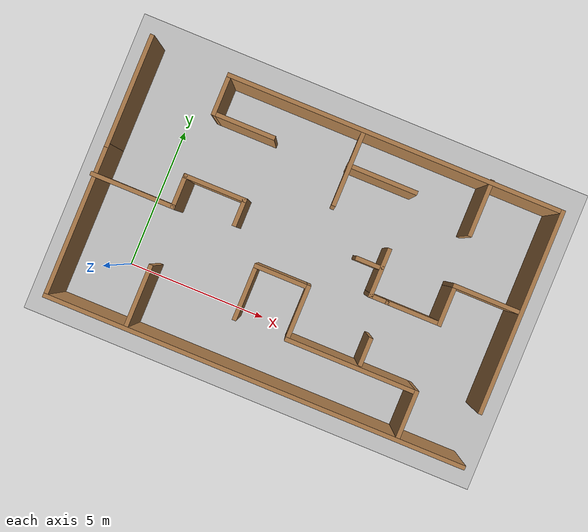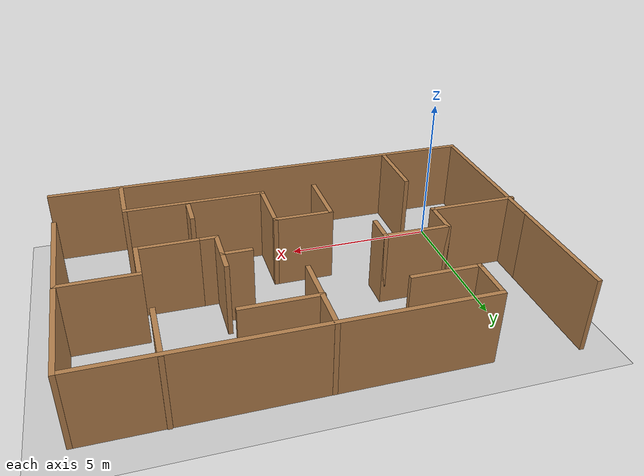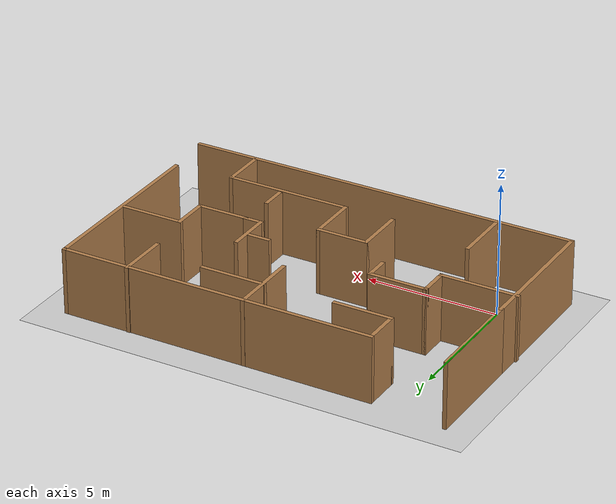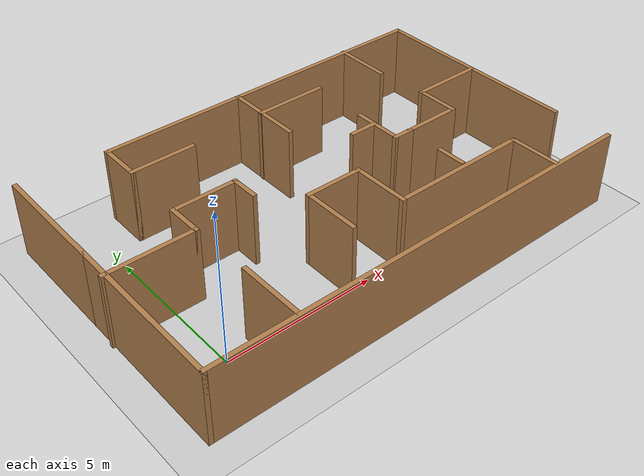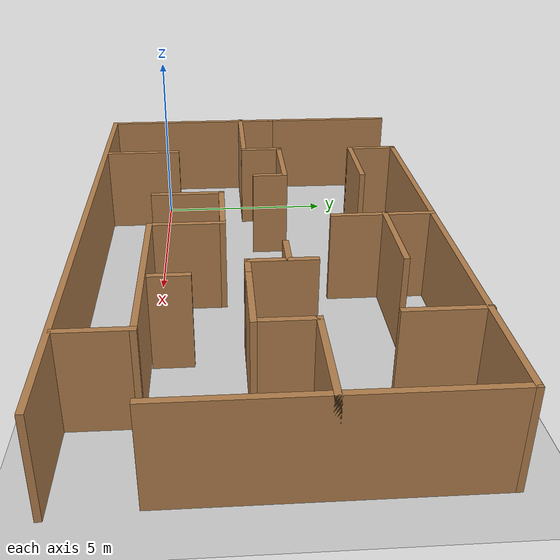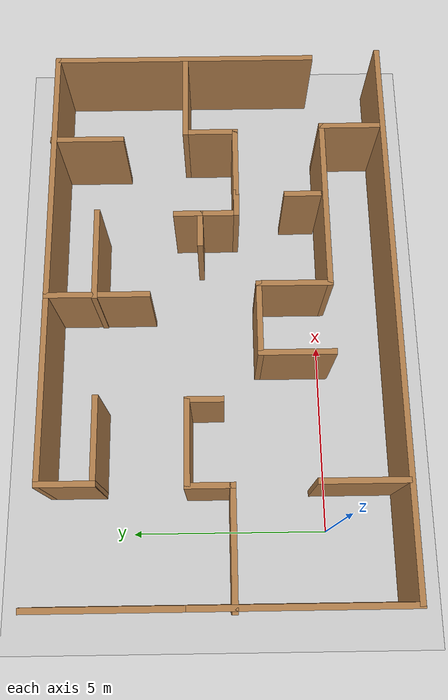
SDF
<?xml version="1.0"?>
<sdf version="1.6">
  <world name="default">

    <include>
      <uri>model://ground_plane</uri>
    </include>

    <include>
      <uri>model://sun</uri>
    </include>

   <include>
      <uri>model://maze1</uri>
    </include>

    <scene>
      <shadows>false</shadows>
    </scene>

    <gui fullscreen='0'>
      <camera name='user_camera'>
        <pose frame=''>0.319654 -0.235002 9.29441 0 1.5138 0.009599</pose>
        <view_controller>orbit</view_controller>
        <projection_type>perspective</projection_type>
      </camera>
    </gui>

    <physics type="ode">
      <real_time_update_rate>1000.0</real_time_update_rate>
      <max_step_size>0.001</max_step_size>
      <real_time_factor>1</real_time_factor>
      <ode>
        <solver>
          <type>quick</type>
          <iters>150</iters>
          <precon_iters>0</precon_iters>
          <sor>1.400000</sor>
          <use_dynamic_moi_rescaling>1</use_dynamic_moi_rescaling>
        </solver>
        <constraints>
          <cfm>0.00001</cfm>
          <erp>0.2</erp>
          <contact_max_correcting_vel>2000.000000</contact_max_correcting_vel>
          <contact_surface_layer>0.01000</contact_surface_layer>
        </constraints>
      </ode>
    </physics>

  </world>
</sdf>

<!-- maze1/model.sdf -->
<sdf version='1.7'>
  <model name='maze1'>
    <pose>5.54702 2.74637 0 0 -0 0</pose>
    <link name='Wall_10'>
      <collision name='Wall_10_Collision'>
        <geometry>
          <box>
            <size>15 0.15 2.5</size>
          </box>
        </geometry>
        <pose>0 0 1.25 0 -0 0</pose>
      </collision>
      <visual name='Wall_10_Visual'>
        <pose>0 0 1.25 0 -0 0</pose>
        <geometry>
          <box>
            <size>15 0.15 2.5</size>
          </box>
        </geometry>
        <material>
          <script>
            <uri>file://media/materials/scripts/gazebo.material</uri>
            <name>Gazebo/Wood</name>
          </script>
          <ambient>1 1 1 1</ambient>
        </material>
        <meta>
          <layer>0</layer>
        </meta>
      </visual>
      <pose>0.04013 -4.6 0 0 -0 0</pose>
    </link>
    <link name='Wall_12'>
      <collision name='Wall_12_Collision'>
        <geometry>
          <box>
            <size>7.25 0.15 2.5</size>
          </box>
        </geometry>
        <pose>0 0 1.25 0 -0 0</pose>
      </collision>
      <visual name='Wall_12_Visual'>
        <pose>0 0 1.25 0 -0 0</pose>
        <geometry>
          <box>
            <size>7.25 0.15 2.5</size>
          </box>
        </geometry>
        <material>
          <script>
            <uri>file://media/materials/scripts/gazebo.material</uri>
            <name>Gazebo/Wood</name>
          </script>
          <ambient>1 1 1 1</ambient>
        </material>
        <meta>
          <layer>0</layer>
        </meta>
      </visual>
      <pose>7.31367 0.850982 0 0 -0 1.5708</pose>
    </link>
    <link name='Wall_13'>
      <collision name='Wall_13_Collision'>
        <geometry>
          <box>
            <size>12 0.15 2.5</size>
          </box>
        </geometry>
        <pose>0 0 1.25 0 -0 0</pose>
      </collision>
      <visual name='Wall_13_Visual'>
        <pose>0 0 1.25 0 -0 0</pose>
        <geometry>
          <box>
            <size>12 0.15 2.5</size>
          </box>
        </geometry>
        <material>
          <script>
            <uri>file://media/materials/scripts/gazebo.material</uri>
            <name>Gazebo/Wood</name>
          </script>
          <ambient>1 1 1 1</ambient>
        </material>
        <meta>
          <layer>0</layer>
        </meta>
      </visual>
      <pose>1.38867 4.40098 0 0 -0 3.14159</pose>
    </link>
    <link name='Wall_14'>
      <collision name='Wall_14_Collision'>
        <geometry>
          <box>
            <size>1.5 0.15 2.5</size>
          </box>
        </geometry>
        <pose>0 0 1.25 0 -0 0</pose>
      </collision>
      <visual name='Wall_14_Visual'>
        <pose>0 0 1.25 0 -0 0</pose>
        <geometry>
          <box>
            <size>1.5 0.15 2.5</size>
          </box>
        </geometry>
        <material>
          <script>
            <uri>file://media/materials/scripts/gazebo.material</uri>
            <name>Gazebo/Wood</name>
          </script>
          <ambient>1 1 1 1</ambient>
        </material>
        <meta>
          <layer>0</layer>
        </meta>
      </visual>
      <pose>-4.53633 3.72598 0 0 -0 -1.5708</pose>
    </link>
    <link name='Wall_15'>
      <collision name='Wall_15_Collision'>
        <geometry>
          <box>
            <size>2.25 0.15 2.5</size>
          </box>
        </geometry>
        <pose>0 0 1.25 0 -0 0</pose>
      </collision>
      <visual name='Wall_15_Visual'>
        <pose>0 0 1.25 0 -0 0</pose>
        <geometry>
          <box>
            <size>2.25 0.15 2.5</size>
          </box>
        </geometry>
        <material>
          <script>
            <uri>file://media/materials/scripts/gazebo.material</uri>
            <name>Gazebo/Wood</name>
          </script>
          <ambient>1 1 1 1</ambient>
        </material>
        <meta>
          <layer>0</layer>
        </meta>
      </visual>
      <pose>-3.48633 3.05098 0 0 -0 0</pose>
    </link>
    <link name='Wall_17'>
      <collision name='Wall_17_Collision'>
        <geometry>
          <box>
            <size>2.75 0.15 2.5</size>
          </box>
        </geometry>
        <pose>0 0 1.25 0 -0 0</pose>
      </collision>
      <visual name='Wall_17_Visual'>
        <pose>0 0 1.25 0 -0 0</pose>
        <geometry>
          <box>
            <size>2.75 0.15 2.5</size>
          </box>
        </geometry>
        <material>
          <script>
            <uri>file://media/materials/scripts/gazebo.material</uri>
            <name>Gazebo/Wood</name>
          </script>
          <ambient>1 1 1 1</ambient>
        </material>
        <meta>
          <layer>0</layer>
        </meta>
      </visual>
      <pose>0.259066 3.10342 0 0 -0 -1.5708</pose>
    </link>
    <link name='Wall_19'>
      <collision name='Wall_19_Collision'>
        <geometry>
          <box>
            <size>2.5 0.15 2.5</size>
          </box>
        </geometry>
        <pose>0 0 1.25 0 -0 0</pose>
      </collision>
      <visual name='Wall_19_Visual'>
        <pose>0 0 1.25 0 -0 0</pose>
        <geometry>
          <box>
            <size>2.5 0.15 2.5</size>
          </box>
        </geometry>
        <material>
          <script>
            <uri>file://media/materials/scripts/gazebo.material</uri>
            <name>Gazebo/Wood</name>
          </script>
          <ambient>1 1 1 1</ambient>
        </material>
        <meta>
          <layer>0</layer>
        </meta>
      </visual>
      <pose>1.41015 3.15989 0 0 -0 0</pose>
    </link>
    <link name='Wall_21'>
      <collision name='Wall_21_Collision'>
        <geometry>
          <box>
            <size>2 0.15 2.5</size>
          </box>
        </geometry>
        <pose>0 0 1.25 0 -0 0</pose>
      </collision>
      <visual name='Wall_21_Visual'>
        <pose>0 0 1.25 0 -0 0</pose>
        <geometry>
          <box>
            <size>2 0.15 2.5</size>
          </box>
        </geometry>
        <material>
          <script>
            <uri>file://media/materials/scripts/gazebo.material</uri>
            <name>Gazebo/Wood</name>
          </script>
          <ambient>1 1 1 1</ambient>
        </material>
        <meta>
          <layer>0</layer>
        </meta>
      </visual>
      <pose>4.7788 3.50233 0 0 -0 -1.5708</pose>
    </link>
    <link name='Wall_23'>
      <collision name='Wall_23_Collision'>
        <geometry>
          <box>
            <size>2.5 0.15 2.5</size>
          </box>
        </geometry>
        <pose>0 0 1.25 0 -0 0</pose>
      </collision>
      <visual name='Wall_23_Visual'>
        <pose>0 0 1.25 0 -0 0</pose>
        <geometry>
          <box>
            <size>2.5 0.15 2.5</size>
          </box>
        </geometry>
        <material>
          <script>
            <uri>file://media/materials/scripts/gazebo.material</uri>
            <name>Gazebo/Wood</name>
          </script>
          <ambient>1 1 1 1</ambient>
        </material>
        <meta>
          <layer>0</layer>
        </meta>
      </visual>
      <pose>6.13867 0.816328 0 0 -0 3.14159</pose>
    </link>
    <link name='Wall_24'>
      <collision name='Wall_24_Collision'>
        <geometry>
          <box>
            <size>1.5 0.15 2.5</size>
          </box>
        </geometry>
        <pose>0 0 1.25 0 -0 0</pose>
      </collision>
      <visual name='Wall_24_Visual'>
        <pose>0 0 1.25 0 -0 0</pose>
        <geometry>
          <box>
            <size>1.5 0.15 2.5</size>
          </box>
        </geometry>
        <material>
          <script>
            <uri>file://media/materials/scripts/gazebo.material</uri>
            <name>Gazebo/Wood</name>
          </script>
          <ambient>1 1 1 1</ambient>
        </material>
        <meta>
          <layer>0</layer>
        </meta>
      </visual>
      <pose>4.96367 0.141328 0 0 -0 -1.5708</pose>
    </link>
    <link name='Wall_25'>
      <collision name='Wall_25_Collision'>
        <geometry>
          <box>
            <size>2 0.15 2.5</size>
          </box>
        </geometry>
        <pose>0 0 1.25 0 -0 0</pose>
      </collision>
      <visual name='Wall_25_Visual'>
        <pose>0 0 1.25 0 -0 0</pose>
        <geometry>
          <box>
            <size>2 0.15 2.5</size>
          </box>
        </geometry>
        <material>
          <script>
            <uri>file://media/materials/scripts/gazebo.material</uri>
            <name>Gazebo/Wood</name>
          </script>
          <ambient>1 1 1 1</ambient>
        </material>
        <meta>
          <layer>0</layer>
        </meta>
      </visual>
      <pose>4.03867 -0.533672 0 0 -0 3.14159</pose>
    </link>
    <link name='Wall_26'>
      <collision name='Wall_26_Collision'>
        <geometry>
          <box>
            <size>0.75 0.15 2.5</size>
          </box>
        </geometry>
        <pose>0 0 1.25 0 -0 0</pose>
      </collision>
      <visual name='Wall_26_Visual'>
        <pose>0 0 1.25 0 -0 0</pose>
        <geometry>
          <box>
            <size>0.75 0.15 2.5</size>
          </box>
        </geometry>
        <material>
          <script>
            <uri>file://media/materials/scripts/gazebo.material</uri>
            <name>Gazebo/Wood</name>
          </script>
          <ambient>1 1 1 1</ambient>
        </material>
        <meta>
          <layer>0</layer>
        </meta>
      </visual>
      <pose>2.81367 -0.533672 0 0 -0 3.14159</pose>
    </link>
    <link name='Wall_27'>
      <collision name='Wall_27_Collision'>
        <geometry>
          <box>
            <size>1.75 0.15 2.5</size>
          </box>
        </geometry>
        <pose>0 0 1.25 0 -0 0</pose>
      </collision>
      <visual name='Wall_27_Visual'>
        <pose>0 0 1.25 0 -0 0</pose>
        <geometry>
          <box>
            <size>1.75 0.15 2.5</size>
          </box>
        </geometry>
        <material>
          <script>
            <uri>file://media/materials/scripts/gazebo.material</uri>
            <name>Gazebo/Wood</name>
          </script>
          <ambient>1 1 1 1</ambient>
        </material>
        <meta>
          <layer>0</layer>
        </meta>
      </visual>
      <pose>2.51367 0.266328 0 0 -0 1.5708</pose>
    </link>
    <link name='Wall_29'>
      <collision name='Wall_29_Collision'>
        <geometry>
          <box>
            <size>3 0.15 2.5</size>
          </box>
        </geometry>
        <pose>0 0 1.25 0 -0 0</pose>
      </collision>
      <visual name='Wall_29_Visual'>
        <pose>0 0 1.25 0 -0 0</pose>
        <geometry>
          <box>
            <size>3 0.15 2.5</size>
          </box>
        </geometry>
        <material>
          <script>
            <uri>file://media/materials/scripts/gazebo.material</uri>
            <name>Gazebo/Wood</name>
          </script>
          <ambient>1 1 1 1</ambient>
        </material>
        <meta>
          <layer>0</layer>
        </meta>
      </visual>
      <pose>-6.04013 -0.307626 0 0 -0 0</pose>
    </link>
    <link name='Wall_30'>
      <collision name='Wall_30_Collision'>
        <geometry>
          <box>
            <size>1.25 0.15 2.5</size>
          </box>
        </geometry>
        <pose>0 0 1.25 0 -0 0</pose>
      </collision>
      <visual name='Wall_30_Visual'>
        <pose>0 0 1.25 0 -0 0</pose>
        <geometry>
          <box>
            <size>1.25 0.15 2.5</size>
          </box>
        </geometry>
        <material>
          <script>
            <uri>file://media/materials/scripts/gazebo.material</uri>
            <name>Gazebo/Wood</name>
          </script>
          <ambient>1 1 1 1</ambient>
        </material>
        <meta>
          <layer>0</layer>
        </meta>
      </visual>
      <pose>-4.61513 0.242374 0 0 -0 1.5708</pose>
    </link>
    <link name='Wall_31'>
      <collision name='Wall_31_Collision'>
        <geometry>
          <box>
            <size>2.25 0.15 2.5</size>
          </box>
        </geometry>
        <pose>0 0 1.25 0 -0 0</pose>
      </collision>
      <visual name='Wall_31_Visual'>
        <pose>0 0 1.25 0 -0 0</pose>
        <geometry>
          <box>
            <size>2.25 0.15 2.5</size>
          </box>
        </geometry>
        <material>
          <script>
            <uri>file://media/materials/scripts/gazebo.material</uri>
            <name>Gazebo/Wood</name>
          </script>
          <ambient>1 1 1 1</ambient>
        </material>
        <meta>
          <layer>0</layer>
        </meta>
      </visual>
      <pose>-3.56513 0.792374 0 0 -0 0</pose>
    </link>
    <link name='Wall_33'>
      <collision name='Wall_33_Collision'>
        <geometry>
          <box>
            <size>2.25 0.15 2.5</size>
          </box>
        </geometry>
        <pose>0 0 1.25 0 -0 0</pose>
      </collision>
      <visual name='Wall_33_Visual'>
        <pose>0 0 1.25 0 -0 0</pose>
        <geometry>
          <box>
            <size>2.25 0.15 2.5</size>
          </box>
        </geometry>
        <material>
          <script>
            <uri>file://media/materials/scripts/gazebo.material</uri>
            <name>Gazebo/Wood</name>
          </script>
          <ambient>1 1 1 1</ambient>
        </material>
        <meta>
          <layer>0</layer>
        </meta>
      </visual>
      <pose>-4.54763 -3.46205 0 0 -0 -1.5708</pose>
    </link>
    <link name='Wall_35'>
      <collision name='Wall_35_Collision'>
        <geometry>
          <box>
            <size>1.75 0.15 2.5</size>
          </box>
        </geometry>
        <pose>0 0 1.25 0 -0 0</pose>
      </collision>
      <visual name='Wall_35_Visual'>
        <pose>0 0 1.25 0 -0 0</pose>
        <geometry>
          <box>
            <size>1.75 0.15 2.5</size>
          </box>
        </geometry>
        <material>
          <script>
            <uri>file://media/materials/scripts/gazebo.material</uri>
            <name>Gazebo/Wood</name>
          </script>
          <ambient>1 1 1 1</ambient>
        </material>
        <meta>
          <layer>0</layer>
        </meta>
      </visual>
      <pose>5.11359 -3.71648 0 0 -0 1.5708</pose>
    </link>
    <link name='Wall_36'>
      <collision name='Wall_36_Collision'>
        <geometry>
          <box>
            <size>4.75 0.15 2.5</size>
          </box>
        </geometry>
        <pose>0 0 1.25 0 -0 0</pose>
      </collision>
      <visual name='Wall_36_Visual'>
        <pose>0 0 1.25 0 -0 0</pose>
        <geometry>
          <box>
            <size>4.75 0.15 2.5</size>
          </box>
        </geometry>
        <material>
          <script>
            <uri>file://media/materials/scripts/gazebo.material</uri>
            <name>Gazebo/Wood</name>
          </script>
          <ambient>1 1 1 1</ambient>
        </material>
        <meta>
          <layer>0</layer>
        </meta>
      </visual>
      <pose>2.81359 -2.91648 0 0 -0 3.14159</pose>
    </link>
    <link name='Wall_37'>
      <collision name='Wall_37_Collision'>
        <geometry>
          <box>
            <size>2 0.15 2.5</size>
          </box>
        </geometry>
        <pose>0 0 1.25 0 -0 0</pose>
      </collision>
      <visual name='Wall_37_Visual'>
        <pose>0 0 1.25 0 -0 0</pose>
        <geometry>
          <box>
            <size>2 0.15 2.5</size>
          </box>
        </geometry>
        <material>
          <script>
            <uri>file://media/materials/scripts/gazebo.material</uri>
            <name>Gazebo/Wood</name>
          </script>
          <ambient>1 1 1 1</ambient>
        </material>
        <meta>
          <layer>0</layer>
        </meta>
      </visual>
      <pose>0.513592 -1.99148 0 0 -0 1.5708</pose>
    </link>
    <link name='Wall_38'>
      <collision name='Wall_38_Collision'>
        <geometry>
          <box>
            <size>2 0.15 2.5</size>
          </box>
        </geometry>
        <pose>0 0 1.25 0 -0 0</pose>
      </collision>
      <visual name='Wall_38_Visual'>
        <pose>0 0 1.25 0 -0 0</pose>
        <geometry>
          <box>
            <size>2 0.15 2.5</size>
          </box>
        </geometry>
        <material>
          <script>
            <uri>file://media/materials/scripts/gazebo.material</uri>
            <name>Gazebo/Wood</name>
          </script>
          <ambient>1 1 1 1</ambient>
        </material>
        <meta>
          <layer>0</layer>
        </meta>
      </visual>
      <pose>-0.411408 -1.06648 0 0 -0 3.14159</pose>
    </link>
    <link name='Wall_39'>
      <collision name='Wall_39_Collision'>
        <geometry>
          <box>
            <size>2 0.15 2.5</size>
          </box>
        </geometry>
        <pose>0 0 1.25 0 -0 0</pose>
      </collision>
      <visual name='Wall_39_Visual'>
        <pose>0 0 1.25 0 -0 0</pose>
        <geometry>
          <box>
            <size>2 0.15 2.5</size>
          </box>
        </geometry>
        <material>
          <script>
            <uri>file://media/materials/scripts/gazebo.material</uri>
            <name>Gazebo/Wood</name>
          </script>
          <ambient>1 1 1 1</ambient>
        </material>
        <meta>
          <layer>0</layer>
        </meta>
      </visual>
      <pose>-1.33641 -1.99148 0 0 -0 -1.5708</pose>
    </link>
    <link name='Wall_41'>
      <collision name='Wall_41_Collision'>
        <geometry>
          <box>
            <size>1 0.15 2.5</size>
          </box>
        </geometry>
        <pose>0 0 1.25 0 -0 0</pose>
      </collision>
      <visual name='Wall_41_Visual'>
        <pose>0 0 1.25 0 -0 0</pose>
        <geometry>
          <box>
            <size>1 0.15 2.5</size>
          </box>
        </geometry>
        <material>
          <script>
            <uri>file://media/materials/scripts/gazebo.material</uri>
            <name>Gazebo/Wood</name>
          </script>
          <ambient>1 1 1 1</ambient>
        </material>
        <meta>
          <layer>0</layer>
        </meta>
      </visual>
      <pose>-2.51513 0.367374 0 0 -0 -1.5708</pose>
    </link>
    <link name='Wall_43'>
      <collision name='Wall_43_Collision'>
        <geometry>
          <box>
            <size>1 0.15 2.5</size>
          </box>
        </geometry>
        <pose>0 0 1.25 0 -0 0</pose>
      </collision>
      <visual name='Wall_43_Visual'>
        <pose>0 0 1.25 0 -0 0</pose>
        <geometry>
          <box>
            <size>1 0.15 2.5</size>
          </box>
        </geometry>
        <material>
          <script>
            <uri>file://media/materials/scripts/gazebo.material</uri>
            <name>Gazebo/Wood</name>
          </script>
          <ambient>1 1 1 1</ambient>
        </material>
        <meta>
          <layer>0</layer>
        </meta>
      </visual>
      <pose>2.08197 0.433706 0 0 -0 3.14159</pose>
    </link>
    <link name='Wall_45'>
      <collision name='Wall_45_Collision'>
        <geometry>
          <box>
            <size>1 0.15 2.5</size>
          </box>
        </geometry>
        <pose>0 0 1.25 0 -0 0</pose>
      </collision>
      <visual name='Wall_45_Visual'>
        <pose>0 0 1.25 0 -0 0</pose>
        <geometry>
          <box>
            <size>1 0.15 2.5</size>
          </box>
        </geometry>
        <material>
          <script>
            <uri>file://media/materials/scripts/gazebo.material</uri>
            <name>Gazebo/Wood</name>
          </script>
          <ambient>1 1 1 1</ambient>
        </material>
        <meta>
          <layer>0</layer>
        </meta>
      </visual>
      <pose>3.05699 -2.31094 0 0 -0 -1.5708</pose>
    </link>
    <link name='Wall_7'>
      <collision name='Wall_7_Collision'>
        <geometry>
          <box>
            <size>4 0.15 2.5</size>
          </box>
        </geometry>
        <pose>0 0 1.25 0 -0 0</pose>
      </collision>
      <visual name='Wall_7_Visual'>
        <pose>0 0 1.25 0 -0 0</pose>
        <geometry>
          <box>
            <size>4 0.15 2.5</size>
          </box>
        </geometry>
        <material>
          <script>
            <uri>file://media/materials/scripts/gazebo.material</uri>
            <name>Gazebo/Wood</name>
          </script>
          <ambient>1 1 1 1</ambient>
        </material>
        <meta>
          <layer>0</layer>
        </meta>
      </visual>
      <pose>-7.38487 2.675 0 0 -0 -1.5708</pose>
    </link>
    <link name='Wall_9'>
      <collision name='Wall_9_Collision'>
        <geometry>
          <box>
            <size>5.5 0.15 2.5</size>
          </box>
        </geometry>
        <pose>0 0 1.25 0 -0 0</pose>
      </collision>
      <visual name='Wall_9_Visual'>
        <pose>0 0 1.25 0 -0 0</pose>
        <geometry>
          <box>
            <size>5.5 0.15 2.5</size>
          </box>
        </geometry>
        <material>
          <script>
            <uri>file://media/materials/scripts/gazebo.material</uri>
            <name>Gazebo/Wood</name>
          </script>
          <ambient>1 1 1 1</ambient>
        </material>
        <meta>
          <layer>0</layer>
        </meta>
      </visual>
      <pose>-7.38487 -1.925 0 0 -0 -1.5708</pose>
    </link>
    <static>1</static>
  </model>
</sdf>
